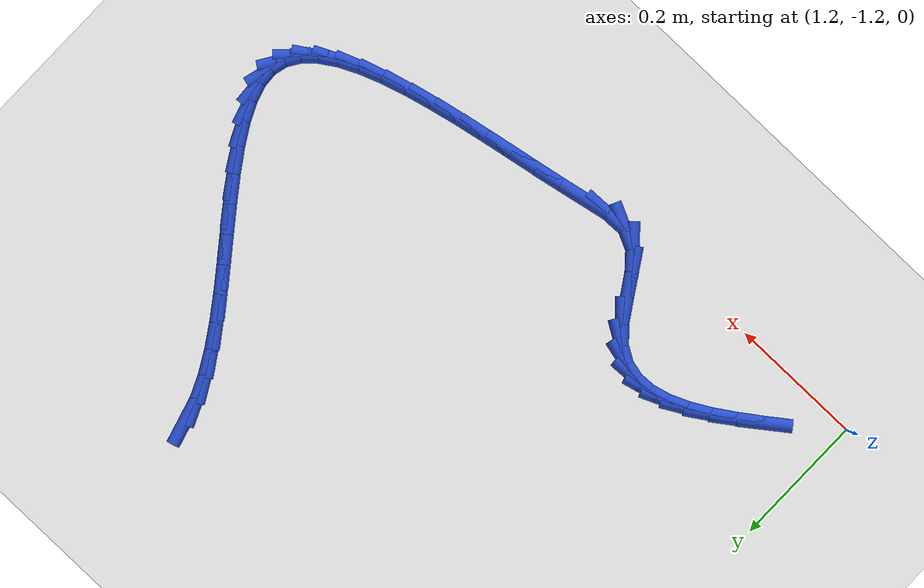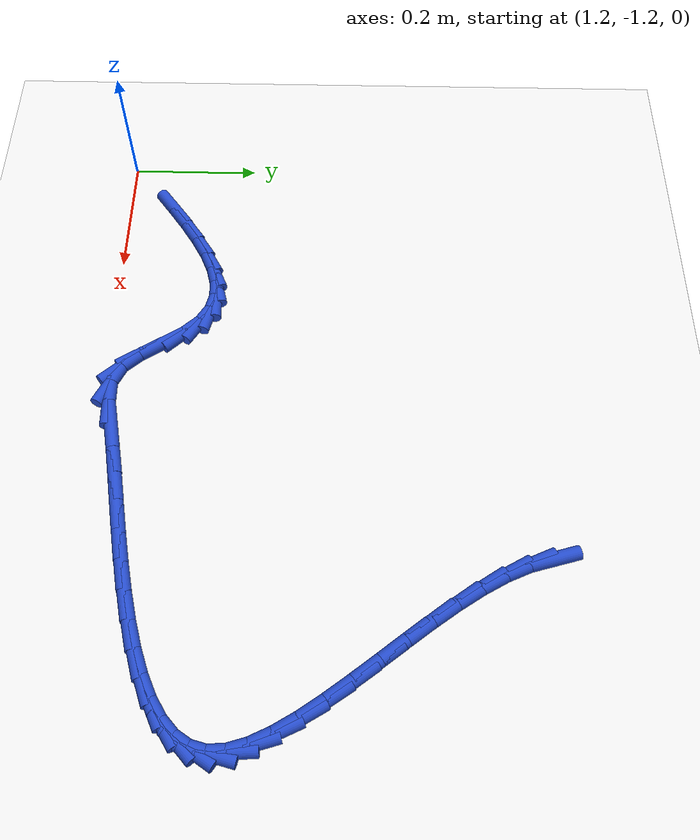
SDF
<sdf version="1.6">
 <world name="default">
  <model name="ground_plane">
   <static>1</static>
   <link name="link">
    <collision name="collision">
     <geometry><plane><normal>0 0 1</normal><size>100 100</size></plane></geometry>
     <surface><friction><ode><mu>100</mu><mu2>50</mu2></ode></friction></surface>
    </collision>
    <visual name="visual">
     <cast_shadows>0</cast_shadows>
     <geometry><plane><normal>0 0 1</normal><size>100 100</size></plane></geometry>
     <material>
      <script><uri>file://media/materials/scripts/gazebo.material</uri><name>Gazebo/WhiteGlow</name></script>
     </material>
    </visual>
   </link>
  </model>
  <model name="line">
   <link name="link_156">
    <pose>1.891719238477143 -0.5613765673841786 0.01 0 1.57 -1.2908654457446136</pose>
    <collision name="collision">
     <geometry><cylinder><radius>0.01</radius><length>0.08</length></cylinder></geometry>
    </collision>
    <visual name="visual">
     <material>
      <script><name>Gazebo/Blue</name><uri>file://media/materials/scripts/gazebo.material</uri></script>
     </material>
     <geometry><cylinder><radius>0.01</radius><length>0.08</length></cylinder></geometry>
    </visual>
   </link>
   <link name="link_157">
    <pose>1.900593535024857 -0.5922458876786112 0.01 0 1.57 -1.1511457233506504</pose>
    <collision name="collision">
     <geometry><cylinder><radius>0.01</radius><length>0.08</length></cylinder></geometry>
    </collision>
    <visual name="visual">
     <material>
      <script><name>Gazebo/Blue</name><uri>file://media/materials/scripts/gazebo.material</uri></script>
     </material>
     <geometry><cylinder><radius>0.01</radius><length>0.08</length></cylinder></geometry>
    </visual>
   </link>
   <link name="link_158">
    <pose>1.914964509362727 -0.6244567146232703 0.01 0 1.57 -1.0548787739971512</pose>
    <collision name="collision">
     <geometry><cylinder><radius>0.01</radius><length>0.08</length></cylinder></geometry>
    </collision>
    <visual name="visual">
     <material>
      <script><name>Gazebo/Blue</name><uri>file://media/materials/scripts/gazebo.material</uri></script>
     </material>
     <geometry><cylinder><radius>0.01</radius><length>0.08</length></cylinder></geometry>
    </visual>
   </link>
   <link name="link_159">
    <pose>1.9338228574168141 -0.6577075767078031 0.01 0 1.57 -0.989405676693418</pose>
    <collision name="collision">
     <geometry><cylinder><radius>0.01</radius><length>0.08</length></cylinder></geometry>
    </collision>
    <visual name="visual">
     <material>
      <script><name>Gazebo/Blue</name><uri>file://media/materials/scripts/gazebo.material</uri></script>
     </material>
     <geometry><cylinder><radius>0.01</radius><length>0.08</length></cylinder></geometry>
    </visual>
   </link>
   <link name="link_160">
    <pose>1.9561592751131778 -0.6916970024218559 0.01 0 1.57 -0.9464272856446595</pose>
    <collision name="collision">
     <geometry><cylinder><radius>0.01</radius><length>0.08</length></cylinder></geometry>
    </collision>
    <visual name="visual">
     <material>
      <script><name>Gazebo/Blue</name><uri>file://media/materials/scripts/gazebo.material</uri></script>
     </material>
     <geometry><cylinder><radius>0.01</radius><length>0.08</length></cylinder></geometry>
    </visual>
   </link>
   <link name="link_161">
    <pose>1.9809644583778785 -0.7261235202550754 0.01 0 1.57 -0.9209732050087082</pose>
    <collision name="collision">
     <geometry><cylinder><radius>0.01</radius><length>0.08</length></cylinder></geometry>
    </collision>
    <visual name="visual">
     <material>
      <script><name>Gazebo/Blue</name><uri>file://media/materials/scripts/gazebo.material</uri></script>
     </material>
     <geometry><cylinder><radius>0.01</radius><length>0.08</length></cylinder></geometry>
    </visual>
   </link>
   <link name="link_162">
    <pose>2.007229103136977 -0.7606856586971085 0.01 0 1.57 -0.9104394518696258</pose>
    <collision name="collision">
     <geometry><cylinder><radius>0.01</radius><length>0.08</length></cylinder></geometry>
    </collision>
    <visual name="visual">
     <material>
      <script><name>Gazebo/Blue</name><uri>file://media/materials/scripts/gazebo.material</uri></script>
     </material>
     <geometry><cylinder><radius>0.01</radius><length>0.08</length></cylinder></geometry>
    </visual>
   </link>
   <link name="link_163">
    <pose>2.0339439053165327 -0.7950819462376015 0.01 0 1.57 -0.9140562432340581</pose>
    <collision name="collision">
     <geometry><cylinder><radius>0.01</radius><length>0.08</length></cylinder></geometry>
    </collision>
    <visual name="visual">
     <material>
      <script><name>Gazebo/Blue</name><uri>file://media/materials/scripts/gazebo.material</uri></script>
     </material>
     <geometry><cylinder><radius>0.01</radius><length>0.08</length></cylinder></geometry>
    </visual>
   </link>
   <link name="link_164">
    <pose>2.060099560842606 -0.8290109113662011 0.01 0 1.57 -0.9327781176025094</pose>
    <collision name="collision">
     <geometry><cylinder><radius>0.01</radius><length>0.08</length></cylinder></geometry>
    </collision>
    <visual name="visual">
     <material>
      <script><name>Gazebo/Blue</name><uri>file://media/materials/scripts/gazebo.material</uri></script>
     </material>
     <geometry><cylinder><radius>0.01</radius><length>0.08</length></cylinder></geometry>
    </visual>
   </link>
   <link name="link_165">
    <pose>2.0846867656412584 -0.862171082572555 0.01 0 1.57 -0.9696178041546201</pose>
    <collision name="collision">
     <geometry><cylinder><radius>0.01</radius><length>0.08</length></cylinder></geometry>
    </collision>
    <visual name="visual">
     <material>
      <script><name>Gazebo/Blue</name><uri>file://media/materials/scripts/gazebo.material</uri></script>
     </material>
     <geometry><cylinder><radius>0.01</radius><length>0.08</length></cylinder></geometry>
    </visual>
   </link>
   <link name="link_166">
    <pose>2.106696215638548 -0.894260988346308 0.01 0 1.57 -1.03058055766364</pose>
    <collision name="collision">
     <geometry><cylinder><radius>0.01</radius><length>0.08</length></cylinder></geometry>
    </collision>
    <visual name="visual">
     <material>
      <script><name>Gazebo/Blue</name><uri>file://media/materials/scripts/gazebo.material</uri></script>
     </material>
     <geometry><cylinder><radius>0.01</radius><length>0.08</length></cylinder></geometry>
    </visual>
   </link>
   <link name="link_167">
    <pose>2.1251186067605365 -0.9249791571771078 0.01 0 1.57 -1.126514796035709</pose>
    <collision name="collision">
     <geometry><cylinder><radius>0.01</radius><length>0.08</length></cylinder></geometry>
    </collision>
    <visual name="visual">
     <material>
      <script><name>Gazebo/Blue</name><uri>file://media/materials/scripts/gazebo.material</uri></script>
     </material>
     <geometry><cylinder><radius>0.01</radius><length>0.08</length></cylinder></geometry>
    </visual>
   </link>
   <link name="link_168">
    <pose>2.138944634933283 -0.9540241175546003 0.01 0 1.57 -1.2759783681487007</pose>
    <collision name="collision">
     <geometry><cylinder><radius>0.01</radius><length>0.08</length></cylinder></geometry>
    </collision>
    <visual name="visual">
     <material>
      <script><name>Gazebo/Blue</name><uri>file://media/materials/scripts/gazebo.material</uri></script>
     </material>
     <geometry><cylinder><radius>0.01</radius><length>0.08</length></cylinder></geometry>
    </visual>
   </link>
   <link name="link_169">
    <pose>2.1471649960828487 -0.981094397968433 0.01 0 1.57 -1.5061377860539313</pose>
    <collision name="collision">
     <geometry><cylinder><radius>0.01</radius><length>0.08</length></cylinder></geometry>
    </collision>
    <visual name="visual">
     <material>
      <script><name>Gazebo/Blue</name><uri>file://media/materials/scripts/gazebo.material</uri></script>
     </material>
     <geometry><cylinder><radius>0.01</radius><length>0.08</length></cylinder></geometry>
    </visual>
   </link>
   <link name="link_170">
    <pose>2.148770386135294 -1.0058885269082523 0.01 0 1.57 1.3186363155808918</pose>
    <collision name="collision">
     <geometry><cylinder><radius>0.01</radius><length>0.08</length></cylinder></geometry>
    </collision>
    <visual name="visual">
     <material>
      <script><name>Gazebo/Blue</name><uri>file://media/materials/scripts/gazebo.material</uri></script>
     </material>
     <geometry><cylinder><radius>0.01</radius><length>0.08</length></cylinder></geometry>
    </visual>
   </link>
   <link name="link_171">
    <pose>2.1430253649907054 -1.028186815675935 0.01 0 1.57 1.004048942452128</pose>
    <collision name="collision">
     <geometry><cylinder><radius>0.01</radius><length>0.08</length></cylinder></geometry>
    </collision>
    <visual name="visual">
     <material>
      <script><name>Gazebo/Blue</name><uri>file://media/materials/scripts/gazebo.material</uri></script>
     </material>
     <geometry><cylinder><radius>0.01</radius><length>0.08</length></cylinder></geometry>
    </visual>
   </link>
   <link name="link_172">
    <pose>2.1303445495684405 -1.0481130121191689 0.01 0 1.57 0.7545319551223015</pose>
    <collision name="collision">
     <geometry><cylinder><radius>0.01</radius><length>0.08</length></cylinder></geometry>
    </collision>
    <visual name="visual">
     <material>
      <script><name>Gazebo/Blue</name><uri>file://media/materials/scripts/gazebo.material</uri></script>
     </material>
     <geometry><cylinder><radius>0.01</radius><length>0.08</length></cylinder></geometry>
    </visual>
   </link>
   <link name="link_173">
    <pose>2.1114443948827644 -1.065881000688408 0.01 0 1.57 0.5752708467508653</pose>
    <collision name="collision">
     <geometry><cylinder><radius>0.01</radius><length>0.08</length></cylinder></geometry>
    </collision>
    <visual name="visual">
     <material>
      <script><name>Gazebo/Blue</name><uri>file://media/materials/scripts/gazebo.material</uri></script>
     </material>
     <geometry><cylinder><radius>0.01</radius><length>0.08</length></cylinder></geometry>
    </visual>
   </link>
   <link name="link_174">
    <pose>2.0870413571733217 -1.081704666200039 0.01 0 1.57 0.44980855726316704</pose>
    <collision name="collision">
     <geometry><cylinder><radius>0.01</radius><length>0.08</length></cylinder></geometry>
    </collision>
    <visual name="visual">
     <material>
      <script><name>Gazebo/Blue</name><uri>file://media/materials/scripts/gazebo.material</uri></script>
     </material>
     <geometry><cylinder><radius>0.01</radius><length>0.08</length></cylinder></geometry>
    </visual>
   </link>
   <link name="link_175">
    <pose>2.057851892679759 -1.0957978934704489 0.01 0 1.57 0.36151941426052725</pose>
    <collision name="collision">
     <geometry><cylinder><radius>0.01</radius><length>0.08</length></cylinder></geometry>
    </collision>
    <visual name="visual">
     <material>
      <script><name>Gazebo/Blue</name><uri>file://media/materials/scripts/gazebo.material</uri></script>
     </material>
     <geometry><cylinder><radius>0.01</radius><length>0.08</length></cylinder></geometry>
    </visual>
   </link>
   <link name="link_176">
    <pose>2.0245924576417225 -1.108374567316024 0.01 0 1.57 0.29871055747636854</pose>
    <collision name="collision">
     <geometry><cylinder><radius>0.01</radius><length>0.08</length></cylinder></geometry>
    </collision>
    <visual name="visual">
     <material>
      <script><name>Gazebo/Blue</name><uri>file://media/materials/scripts/gazebo.material</uri></script>
     </material>
     <geometry><cylinder><radius>0.01</radius><length>0.08</length></cylinder></geometry>
    </visual>
   </link>
   <link name="link_177">
    <pose>1.9879795082988578 -1.1196485725531504 0.01 0 1.57 0.2538959500595881</pose>
    <collision name="collision">
     <geometry><cylinder><radius>0.01</radius><length>0.08</length></cylinder></geometry>
    </collision>
    <visual name="visual">
     <material>
      <script><name>Gazebo/Blue</name><uri>file://media/materials/scripts/gazebo.material</uri></script>
     </material>
     <geometry><cylinder><radius>0.01</radius><length>0.08</length></cylinder></geometry>
    </visual>
   </link>
   <link name="link_178">
    <pose>1.9487295008908112 -1.1298337939982146 0.01 0 1.57 0.2223992662240244</pose>
    <collision name="collision">
     <geometry><cylinder><radius>0.01</radius><length>0.08</length></cylinder></geometry>
    </collision>
    <visual name="visual">
     <material>
      <script><name>Gazebo/Blue</name><uri>file://media/materials/scripts/gazebo.material</uri></script>
     </material>
     <geometry><cylinder><radius>0.01</radius><length>0.08</length></cylinder></geometry>
    </visual>
   </link>
   <link name="link_179">
    <pose>1.9075588916572284 -1.139144116467603 0.01 0 1.57 0.2013488067391694</pose>
    <collision name="collision">
     <geometry><cylinder><radius>0.01</radius><length>0.08</length></cylinder></geometry>
    </collision>
    <visual name="visual">
     <material>
      <script><name>Gazebo/Blue</name><uri>file://media/materials/scripts/gazebo.material</uri></script>
     </material>
     <geometry><cylinder><radius>0.01</radius><length>0.08</length></cylinder></geometry>
    </visual>
   </link>
   <link name="link_180">
    <pose>1.8651841368377555 -1.1477934247777022 0.01 0 1.57 0.18907472039084164</pose>
    <collision name="collision">
     <geometry><cylinder><radius>0.01</radius><length>0.08</length></cylinder></geometry>
    </collision>
    <visual name="visual">
     <material>
      <script><name>Gazebo/Blue</name><uri>file://media/materials/scripts/gazebo.material</uri></script>
     </material>
     <geometry><cylinder><radius>0.01</radius><length>0.08</length></cylinder></geometry>
    </visual>
   </link>
   <link name="link_181">
    <pose>1.8223216926720365 -1.155995603744898 0.01 0 1.57 0.18478413272734268</pose>
    <collision name="collision">
     <geometry><cylinder><radius>0.01</radius><length>0.08</length></cylinder></geometry>
    </collision>
    <visual name="visual">
     <material>
      <script><name>Gazebo/Blue</name><uri>file://media/materials/scripts/gazebo.material</uri></script>
     </material>
     <geometry><cylinder><radius>0.01</radius><length>0.08</length></cylinder></geometry>
    </visual>
   </link>
   <link name="link_182">
    <pose>1.7796880153997212 -1.1639645381855772 0.01 0 1.57 0.1884278999890523</pose>
    <collision name="collision">
     <geometry><cylinder><radius>0.01</radius><length>0.08</length></cylinder></geometry>
    </collision>
    <visual name="visual">
     <material>
      <script><name>Gazebo/Blue</name><uri>file://media/materials/scripts/gazebo.material</uri></script>
     </material>
     <geometry><cylinder><radius>0.01</radius><length>0.08</length></cylinder></geometry>
    </visual>
   </link>
   <link name="link_183">
    <pose>1.7379995612604535 -1.1719141129161263 0.01 0 1.57 0.20072630980800782</pose>
    <collision name="collision">
     <geometry><cylinder><radius>0.01</radius><length>0.08</length></cylinder></geometry>
    </collision>
    <visual name="visual">
     <material>
      <script><name>Gazebo/Blue</name><uri>file://media/materials/scripts/gazebo.material</uri></script>
     </material>
     <geometry><cylinder><radius>0.01</radius><length>0.08</length></cylinder></geometry>
    </visual>
   </link>
   <link name="link_184">
    <pose>1.6979727864938794 -1.180058212752931 0.01 0 1.57 0.20056919854639166</pose>
    <collision name="collision">
     <geometry><cylinder><radius>0.01</radius><length>0.08</length></cylinder></geometry>
    </collision>
    <visual name="visual">
     <material>
      <script><name>Gazebo/Blue</name><uri>file://media/materials/scripts/gazebo.material</uri></script>
     </material>
     <geometry><cylinder><radius>0.01</radius><length>0.08</length></cylinder></geometry>
    </visual>
   </link>
   <link name="link_185">
    <pose>1.6604403075968237 -1.1876886667367215 0.01 0 1.57 0.027356454201565874</pose>
    <collision name="collision">
     <geometry><cylinder><radius>0.01</radius><length>0.08</length></cylinder></geometry>
    </collision>
    <visual name="visual">
     <material>
      <script><name>Gazebo/Blue</name><uri>file://media/materials/scripts/gazebo.material</uri></script>
     </material>
     <geometry><cylinder><radius>0.01</radius><length>0.08</length></cylinder></geometry>
    </visual>
   </link>
   <link name="link_186">
    <pose>1.6269265697837685 -1.1886057125466405 0.01 0 1.57 -0.4419899467368956</pose>
    <collision name="collision">
     <geometry><cylinder><radius>0.01</radius><length>0.08</length></cylinder></geometry>
    </collision>
    <visual name="visual">
     <material>
      <script><name>Gazebo/Blue</name><uri>file://media/materials/scripts/gazebo.material</uri></script>
     </material>
     <geometry><cylinder><radius>0.01</radius><length>0.08</length></cylinder></geometry>
    </visual>
   </link>
   <link name="link_187">
    <pose>1.5990040048377887 -1.1753923695597626 0.01 0 1.57 -0.8428874972335072</pose>
    <collision name="collision">
     <geometry><cylinder><radius>0.01</radius><length>0.08</length></cylinder></geometry>
    </collision>
    <visual name="visual">
     <material>
      <script><name>Gazebo/Blue</name><uri>file://media/materials/scripts/gazebo.material</uri></script>
     </material>
     <geometry><cylinder><radius>0.01</radius><length>0.08</length></cylinder></geometry>
    </visual>
   </link>
   <link name="link_188">
    <pose>1.5759613057148045 -1.1495353574744538 0.01 0 1.57 -0.9983584405928078</pose>
    <collision name="collision">
     <geometry><cylinder><radius>0.01</radius><length>0.08</length></cylinder></geometry>
    </collision>
    <visual name="visual">
     <material>
      <script><name>Gazebo/Blue</name><uri>file://media/materials/scripts/gazebo.material</uri></script>
     </material>
     <geometry><cylinder><radius>0.01</radius><length>0.08</length></cylinder></geometry>
    </visual>
   </link>
   <link name="link_189">
    <pose>1.5556700418537068 -1.118047397215933 0.01 0 1.57 -0.9903533689700309</pose>
    <collision name="collision">
     <geometry><cylinder><radius>0.01</radius><length>0.08</length></cylinder></geometry>
    </collision>
    <visual name="visual">
     <material>
      <script><name>Gazebo/Blue</name><uri>file://media/materials/scripts/gazebo.material</uri></script>
     </material>
     <geometry><cylinder><radius>0.01</radius><length>0.08</length></cylinder></geometry>
    </visual>
   </link>
   <link name="link_190">
    <pose>1.5359805780255236 -1.0880238962354822 0.01 0 1.57 -0.8177673028669429</pose>
    <collision name="collision">
     <geometry><cylinder><radius>0.01</radius><length>0.08</length></cylinder></geometry>
    </collision>
    <visual name="visual">
     <material>
      <script><name>Gazebo/Blue</name><uri>file://media/materials/scripts/gazebo.material</uri></script>
     </material>
     <geometry><cylinder><radius>0.01</radius><length>0.08</length></cylinder></geometry>
    </visual>
   </link>
   <link name="link_191">
    <pose>1.5150018296170897 -1.0656410809131691 0.01 0 1.57 -0.544925084935166</pose>
    <collision name="collision">
     <geometry><cylinder><radius>0.01</radius><length>0.08</length></cylinder></geometry>
    </collision>
    <visual name="visual">
     <material>
      <script><name>Gazebo/Blue</name><uri>file://media/materials/scripts/gazebo.material</uri></script>
     </material>
     <geometry><cylinder><radius>0.01</radius><length>0.08</length></cylinder></geometry>
    </visual>
   </link>
   <link name="link_192">
    <pose>1.4923033239291754 -1.0518825122800506 0.01 0 1.57 -0.24065289305503118</pose>
    <collision name="collision">
     <geometry><cylinder><radius>0.01</radius><length>0.08</length></cylinder></geometry>
    </collision>
    <visual name="visual">
     <material>
      <script><name>Gazebo/Blue</name><uri>file://media/materials/scripts/gazebo.material</uri></script>
     </material>
     <geometry><cylinder><radius>0.01</radius><length>0.08</length></cylinder></geometry>
    </visual>
   </link>
   <link name="link_193">
    <pose>1.4679669728719693 -1.0459101574302039 0.01 0 1.57 0.03759488242864122</pose>
    <collision name="collision">
     <geometry><cylinder><radius>0.01</radius><length>0.08</length></cylinder></geometry>
    </collision>
    <visual name="visual">
     <material>
      <script><name>Gazebo/Blue</name><uri>file://media/materials/scripts/gazebo.material</uri></script>
     </material>
     <geometry><cylinder><radius>0.01</radius><length>0.08</length></cylinder></geometry>
    </visual>
   </link>
   <link name="link_194">
    <pose>1.4420752426598142 -1.0468840128343282 0.01 0 1.57 0.25317838116572783</pose>
    <collision name="collision">
     <geometry><cylinder><radius>0.01</radius><length>0.08</length></cylinder></geometry>
    </collision>
    <visual name="visual">
     <material>
      <script><name>Gazebo/Blue</name><uri>file://media/materials/scripts/gazebo.material</uri></script>
     </material>
     <geometry><cylinder><radius>0.01</radius><length>0.08</length></cylinder></geometry>
    </visual>
   </link>
   <link name="link_195">
    <pose>1.4147105995070552 -1.0539640749631243 0.01 0 1.57 0.40555721371085324</pose>
    <collision name="collision">
     <geometry><cylinder><radius>0.01</radius><length>0.08</length></cylinder></geometry>
    </collision>
    <visual name="visual">
     <material>
      <script><name>Gazebo/Blue</name><uri>file://media/materials/scripts/gazebo.material</uri></script>
     </material>
     <geometry><cylinder><radius>0.01</radius><length>0.08</length></cylinder></geometry>
    </visual>
   </link>
   <link name="link_196">
    <pose>1.3859555096280356 -1.0663103402872922 0.01 0 1.57 0.5088952832958529</pose>
    <collision name="collision">
     <geometry><cylinder><radius>0.01</radius><length>0.08</length></cylinder></geometry>
    </collision>
    <visual name="visual">
     <material>
      <script><name>Gazebo/Blue</name><uri>file://media/materials/scripts/gazebo.material</uri></script>
     </material>
     <geometry><cylinder><radius>0.01</radius><length>0.08</length></cylinder></geometry>
    </visual>
   </link>
   <link name="link_197">
    <pose>1.3558924392370983 -1.083082805277532 0.01 0 1.57 0.5768487216272501</pose>
    <collision name="collision">
     <geometry><cylinder><radius>0.01</radius><length>0.08</length></cylinder></geometry>
    </collision>
    <visual name="visual">
     <material>
      <script><name>Gazebo/Blue</name><uri>file://media/materials/scripts/gazebo.material</uri></script>
     </material>
     <geometry><cylinder><radius>0.01</radius><length>0.08</length></cylinder></geometry>
    </visual>
   </link>
   <link name="link_198">
    <pose>1.32460385454859 -1.1034414664045438 0.01 0 1.57 0.6190111475571771</pose>
    <collision name="collision">
     <geometry><cylinder><radius>0.01</radius><length>0.08</length></cylinder></geometry>
    </collision>
    <visual name="visual">
     <material>
      <script><name>Gazebo/Blue</name><uri>file://media/materials/scripts/gazebo.material</uri></script>
     </material>
     <geometry><cylinder><radius>0.01</radius><length>0.08</length></cylinder></geometry>
    </visual>
   </link>
   <link name="link_199">
    <pose>1.2921722217768539 -1.1265463201390278 0.01 0 1.57 0.6414318841882576</pose>
    <collision name="collision">
     <geometry><cylinder><radius>0.01</radius><length>0.08</length></cylinder></geometry>
    </collision>
    <visual name="visual">
     <material>
      <script><name>Gazebo/Blue</name><uri>file://media/materials/scripts/gazebo.material</uri></script>
     </material>
     <geometry><cylinder><radius>0.01</radius><length>0.08</length></cylinder></geometry>
    </visual>
   </link>
  </model>
 </world>
</sdf>
